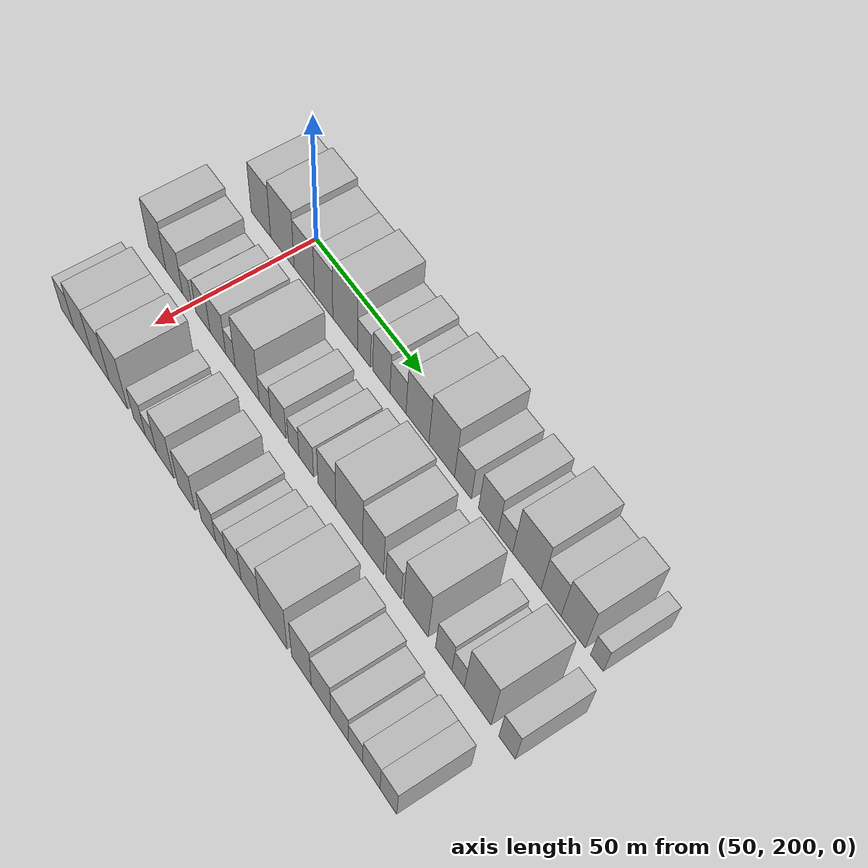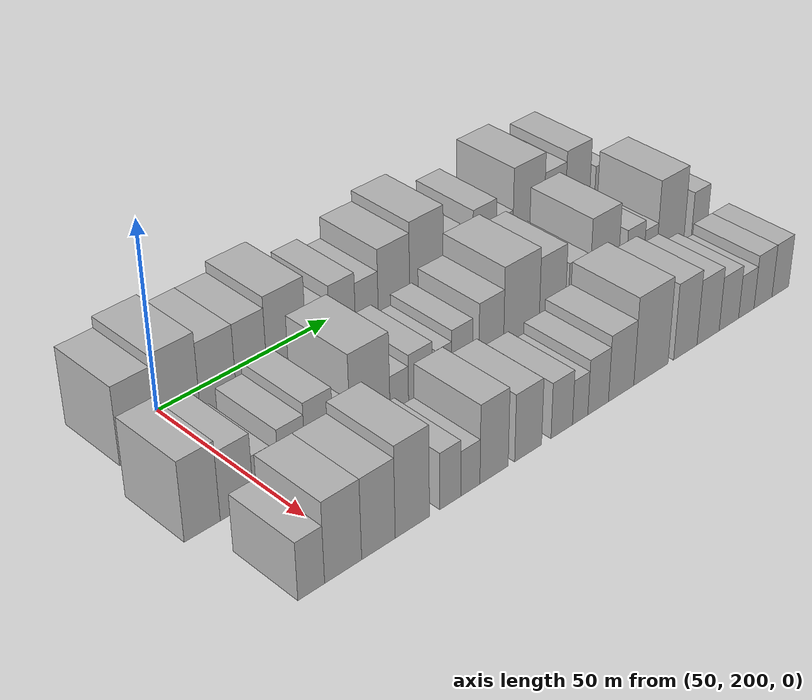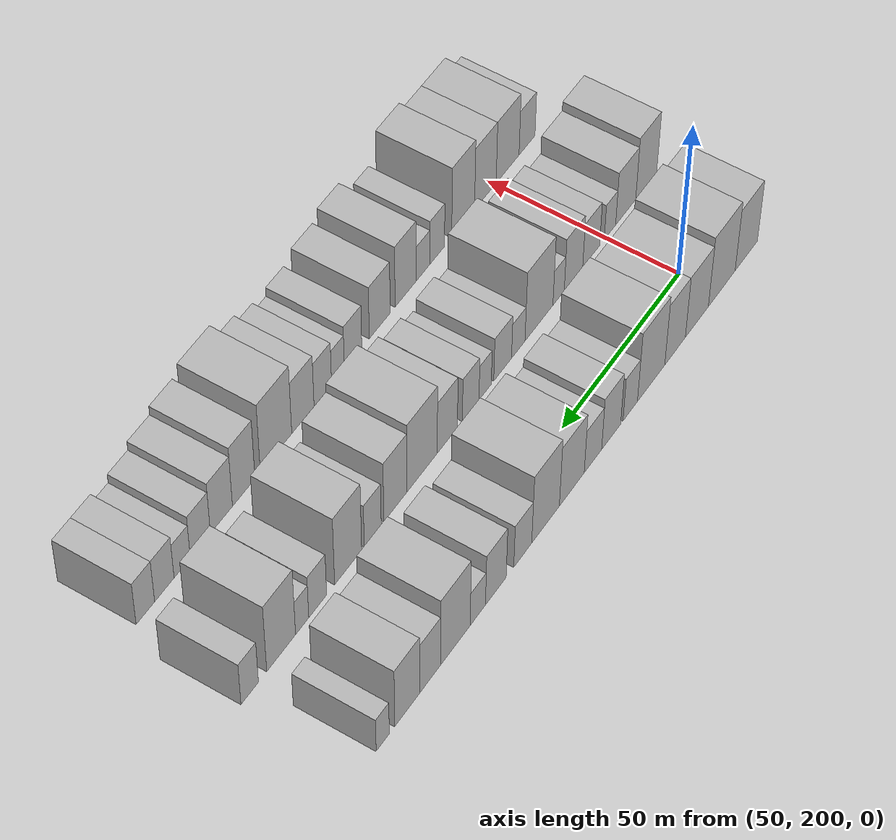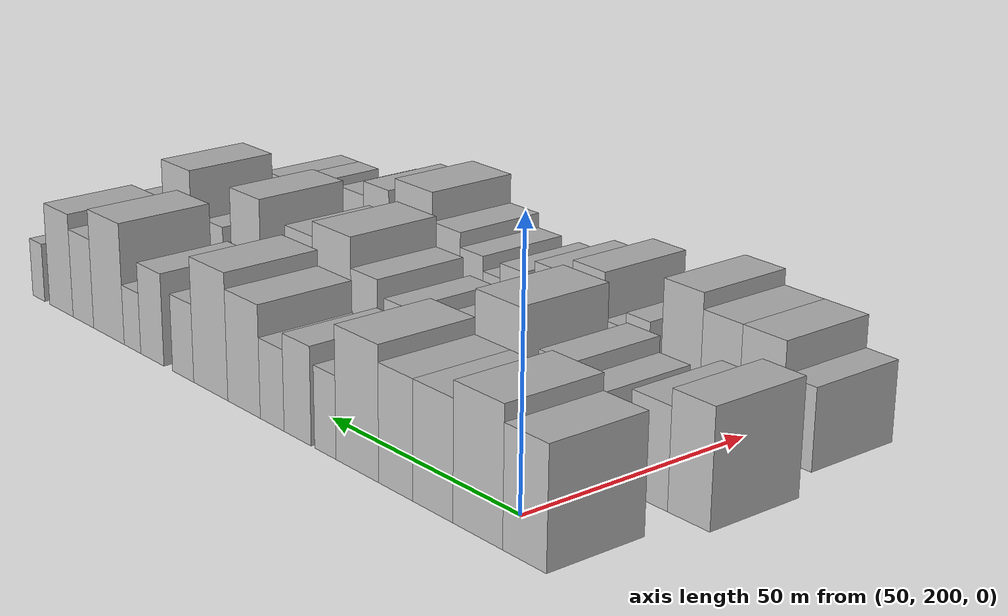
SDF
<sdf version="1.6">
 <world name="default">
  <model name="building_54">
   <static>1</static>
   <pose>50.0000 187.5377 0 0.000000 0.000000 0.000000</pose>
   <link name="link">
    <pose>0 0 10.50 0 0 0</pose>
    <collision name="collision"><geometry><box><size>20.0000 10.0596 21.0000</size></box></geometry></collision>
    <visual name="visual">
     <cast_shadows>0</cast_shadows>
     <geometry><box><size>20.0000 10.0596 21.0000</size></box></geometry>
     <material>
      <script>
       <uri>model://HANNAS_wall/materials/scripts</uri>
       <uri>model://HANNAS_wall/materials/textures</uri>
       <name>vrc/HANNAS_wall</name>
      </script>
     </material>
    </visual>
   </link>
  </model>
  <model name="building_55">
   <static>1</static>
   <pose>50.0000 198.5426 0 0.000000 0.000000 0.000000</pose>
   <link name="link">
    <pose>0 0 12.00 0 0 0</pose>
    <collision name="collision"><geometry><box><size>20.0000 11.9503 24.0000</size></box></geometry></collision>
    <visual name="visual">
     <cast_shadows>0</cast_shadows>
     <geometry><box><size>20.0000 11.9503 24.0000</size></box></geometry>
     <material>
      <script>
       <uri>model://HANNAS_wall/materials/scripts</uri>
       <uri>model://HANNAS_wall/materials/textures</uri>
       <name>vrc/HANNAS_wall</name>
      </script>
     </material>
    </visual>
   </link>
  </model>
  <model name="building_56">
   <static>1</static>
   <pose>50.0000 209.5806 0 0.000000 0.000000 0.000000</pose>
   <link name="link">
    <pose>0 0 10.50 0 0 0</pose>
    <collision name="collision"><geometry><box><size>20.0000 10.1256 21.0000</size></box></geometry></collision>
    <visual name="visual">
     <cast_shadows>0</cast_shadows>
     <geometry><box><size>20.0000 10.1256 21.0000</size></box></geometry>
     <material>
      <script>
       <uri>model://HANNAS_wall/materials/scripts</uri>
       <uri>model://HANNAS_wall/materials/textures</uri>
       <name>vrc/HANNAS_wall</name>
      </script>
     </material>
    </visual>
   </link>
  </model>
  <model name="building_57">
   <static>1</static>
   <pose>50.0000 219.1079 0 0.000000 0.000000 0.000000</pose>
   <link name="link">
    <pose>0 0 10.50 0 0 0</pose>
    <collision name="collision"><geometry><box><size>20.0000 8.9292 21.0000</size></box></geometry></collision>
    <visual name="visual">
     <cast_shadows>0</cast_shadows>
     <geometry><box><size>20.0000 8.9292 21.0000</size></box></geometry>
     <material>
      <script>
       <uri>model://HANNAS_wall/materials/scripts</uri>
       <uri>model://HANNAS_wall/materials/textures</uri>
       <name>vrc/HANNAS_wall</name>
      </script>
     </material>
    </visual>
   </link>
  </model>
  <model name="building_58">
   <static>1</static>
   <pose>50.0000 229.4209 0 0.000000 0.000000 0.000000</pose>
   <link name="link">
    <pose>0 0 12.00 0 0 0</pose>
    <collision name="collision"><geometry><box><size>20.0000 11.6969 24.0000</size></box></geometry></collision>
    <visual name="visual">
     <cast_shadows>0</cast_shadows>
     <geometry><box><size>20.0000 11.6969 24.0000</size></box></geometry>
     <material>
      <script>
       <uri>model://HANNAS_wall/materials/scripts</uri>
       <uri>model://HANNAS_wall/materials/textures</uri>
       <name>vrc/HANNAS_wall</name>
      </script>
     </material>
    </visual>
   </link>
  </model>
  <model name="building_59">
   <static>1</static>
   <pose>50.0000 238.3207 0 0.000000 0.000000 0.000000</pose>
   <link name="link">
    <pose>0 0 7.50 0 0 0</pose>
    <collision name="collision"><geometry><box><size>20.0000 6.1027 15.0000</size></box></geometry></collision>
    <visual name="visual">
     <cast_shadows>0</cast_shadows>
     <geometry><box><size>20.0000 6.1027 15.0000</size></box></geometry>
     <material>
      <script>
       <uri>model://HANNAS_wall/materials/scripts</uri>
       <uri>model://HANNAS_wall/materials/textures</uri>
       <name>vrc/HANNAS_wall</name>
      </script>
     </material>
    </visual>
   </link>
  </model>
  <model name="building_60">
   <static>1</static>
   <pose>50.0000 246.3471 0 0.000000 0.000000 0.000000</pose>
   <link name="link">
    <pose>0 0 9.00 0 0 0</pose>
    <collision name="collision"><geometry><box><size>20.0000 7.9500 18.0000</size></box></geometry></collision>
    <visual name="visual">
     <cast_shadows>0</cast_shadows>
     <geometry><box><size>20.0000 7.9500 18.0000</size></box></geometry>
     <material>
      <script>
       <uri>model://HANNAS_wall/materials/scripts</uri>
       <uri>model://HANNAS_wall/materials/textures</uri>
       <name>vrc/HANNAS_wall</name>
      </script>
     </material>
    </visual>
   </link>
  </model>
  <model name="building_61">
   <static>1</static>
   <pose>50.0000 253.9285 0 0.000000 0.000000 0.000000</pose>
   <link name="link">
    <pose>0 0 7.50 0 0 0</pose>
    <collision name="collision"><geometry><box><size>20.0000 7.2130 15.0000</size></box></geometry></collision>
    <visual name="visual">
     <cast_shadows>0</cast_shadows>
     <geometry><box><size>20.0000 7.2130 15.0000</size></box></geometry>
     <material>
      <script>
       <uri>model://HANNAS_wall/materials/scripts</uri>
       <uri>model://HANNAS_wall/materials/textures</uri>
       <name>vrc/HANNAS_wall</name>
      </script>
     </material>
    </visual>
   </link>
  </model>
  <model name="building_62">
   <static>1</static>
   <pose>50.0000 262.6263 0 0.000000 0.000000 0.000000</pose>
   <link name="link">
    <pose>0 0 10.50 0 0 0</pose>
    <collision name="collision"><geometry><box><size>20.0000 10.1825 21.0000</size></box></geometry></collision>
    <visual name="visual">
     <cast_shadows>0</cast_shadows>
     <geometry><box><size>20.0000 10.1825 21.0000</size></box></geometry>
     <material>
      <script>
       <uri>model://HANNAS_wall/materials/scripts</uri>
       <uri>model://HANNAS_wall/materials/textures</uri>
       <name>vrc/HANNAS_wall</name>
      </script>
     </material>
    </visual>
   </link>
  </model>
  <model name="building_63">
   <static>1</static>
   <pose>50.0000 273.2846 0 0.000000 0.000000 0.000000</pose>
   <link name="link">
    <pose>0 0 12.00 0 0 0</pose>
    <collision name="collision"><geometry><box><size>20.0000 11.1341 24.0000</size></box></geometry></collision>
    <visual name="visual">
     <cast_shadows>0</cast_shadows>
     <geometry><box><size>20.0000 11.1341 24.0000</size></box></geometry>
     <material>
      <script>
       <uri>model://HANNAS_wall/materials/scripts</uri>
       <uri>model://HANNAS_wall/materials/textures</uri>
       <name>vrc/HANNAS_wall</name>
      </script>
     </material>
    </visual>
   </link>
  </model>
  <model name="building_64">
   <static>1</static>
   <pose>50.0000 282.4258 0 0.000000 0.000000 0.000000</pose>
   <link name="link">
    <pose>0 0 7.50 0 0 0</pose>
    <collision name="collision"><geometry><box><size>20.0000 7.1483 15.0000</size></box></geometry></collision>
    <visual name="visual">
     <cast_shadows>0</cast_shadows>
     <geometry><box><size>20.0000 7.1483 15.0000</size></box></geometry>
     <material>
      <script>
       <uri>model://HANNAS_wall/materials/scripts</uri>
       <uri>model://HANNAS_wall/materials/textures</uri>
       <name>vrc/HANNAS_wall</name>
      </script>
     </material>
    </visual>
   </link>
  </model>
  <model name="building_65">
   <static>1</static>
   <pose>50.0000 293.0622 0 0.000000 0.000000 0.000000</pose>
   <link name="link">
    <pose>0 0 9.00 0 0 0</pose>
    <collision name="collision"><geometry><box><size>20.0000 8.1246 18.0000</size></box></geometry></collision>
    <visual name="visual">
     <cast_shadows>0</cast_shadows>
     <geometry><box><size>20.0000 8.1246 18.0000</size></box></geometry>
     <material>
      <script>
       <uri>model://HANNAS_wall/materials/scripts</uri>
       <uri>model://HANNAS_wall/materials/textures</uri>
       <name>vrc/HANNAS_wall</name>
      </script>
     </material>
    </visual>
   </link>
  </model>
  <model name="building_66">
   <static>1</static>
   <pose>50.0000 300.1071 0 0.000000 0.000000 0.000000</pose>
   <link name="link">
    <pose>0 0 6.00 0 0 0</pose>
    <collision name="collision"><geometry><box><size>20.0000 5.9651 12.0000</size></box></geometry></collision>
    <visual name="visual">
     <cast_shadows>0</cast_shadows>
     <geometry><box><size>20.0000 5.9651 12.0000</size></box></geometry>
     <material>
      <script>
       <uri>model://HANNAS_wall/materials/scripts</uri>
       <uri>model://HANNAS_wall/materials/textures</uri>
       <name>vrc/HANNAS_wall</name>
      </script>
     </material>
    </visual>
   </link>
  </model>
  <model name="building_67">
   <static>1</static>
   <pose>50.0000 308.7683 0 0.000000 0.000000 0.000000</pose>
   <link name="link">
    <pose>0 0 12.00 0 0 0</pose>
    <collision name="collision"><geometry><box><size>20.0000 11.3572 24.0000</size></box></geometry></collision>
    <visual name="visual">
     <cast_shadows>0</cast_shadows>
     <geometry><box><size>20.0000 11.3572 24.0000</size></box></geometry>
     <material>
      <script>
       <uri>model://HANNAS_wall/materials/scripts</uri>
       <uri>model://HANNAS_wall/materials/textures</uri>
       <name>vrc/HANNAS_wall</name>
      </script>
     </material>
    </visual>
   </link>
  </model>
  <model name="building_68">
   <static>1</static>
   <pose>50.0000 318.4089 0 0.000000 0.000000 0.000000</pose>
   <link name="link">
    <pose>0 0 9.00 0 0 0</pose>
    <collision name="collision"><geometry><box><size>20.0000 7.9241 18.0000</size></box></geometry></collision>
    <visual name="visual">
     <cast_shadows>0</cast_shadows>
     <geometry><box><size>20.0000 7.9241 18.0000</size></box></geometry>
     <material>
      <script>
       <uri>model://HANNAS_wall/materials/scripts</uri>
       <uri>model://HANNAS_wall/materials/textures</uri>
       <name>vrc/HANNAS_wall</name>
      </script>
     </material>
    </visual>
   </link>
  </model>
  <model name="building_69">
   <static>1</static>
   <pose>50.0000 327.0154 0 0.000000 0.000000 0.000000</pose>
   <link name="link">
    <pose>0 0 10.50 0 0 0</pose>
    <collision name="collision"><geometry><box><size>20.0000 9.2889 21.0000</size></box></geometry></collision>
    <visual name="visual">
     <cast_shadows>0</cast_shadows>
     <geometry><box><size>20.0000 9.2889 21.0000</size></box></geometry>
     <material>
      <script>
       <uri>model://HANNAS_wall/materials/scripts</uri>
       <uri>model://HANNAS_wall/materials/textures</uri>
       <name>vrc/HANNAS_wall</name>
      </script>
     </material>
    </visual>
   </link>
  </model>
  <model name="building_70">
   <static>1</static>
   <pose>50.0000 336.0711 0 0.000000 0.000000 0.000000</pose>
   <link name="link">
    <pose>0 0 6.00 0 0 0</pose>
    <collision name="collision"><geometry><box><size>20.0000 4.8225 12.0000</size></box></geometry></collision>
    <visual name="visual">
     <cast_shadows>0</cast_shadows>
     <geometry><box><size>20.0000 4.8225 12.0000</size></box></geometry>
     <material>
      <script>
       <uri>model://HANNAS_wall/materials/scripts</uri>
       <uri>model://HANNAS_wall/materials/textures</uri>
       <name>vrc/HANNAS_wall</name>
      </script>
     </material>
    </visual>
   </link>
  </model>
  <model name="building_131">
   <static>1</static>
   <pose>79.0000 182.0375 0 0.000000 0.000000 0.000000</pose>
   <link name="link">
    <pose>0 0 10.50 0 0 0</pose>
    <collision name="collision"><geometry><box><size>20.0000 9.3347 21.0000</size></box></geometry></collision>
    <visual name="visual">
     <cast_shadows>0</cast_shadows>
     <geometry><box><size>20.0000 9.3347 21.0000</size></box></geometry>
     <material>
      <script>
       <uri>model://HANNAS_wall/materials/scripts</uri>
       <uri>model://HANNAS_wall/materials/textures</uri>
       <name>vrc/HANNAS_wall</name>
      </script>
     </material>
    </visual>
   </link>
  </model>
  <model name="building_132">
   <static>1</static>
   <pose>79.0000 191.1346 0 0.000000 0.000000 0.000000</pose>
   <link name="link">
    <pose>0 0 9.00 0 0 0</pose>
    <collision name="collision"><geometry><box><size>20.0000 8.8595 18.0000</size></box></geometry></collision>
    <visual name="visual">
     <cast_shadows>0</cast_shadows>
     <geometry><box><size>20.0000 8.8595 18.0000</size></box></geometry>
     <material>
      <script>
       <uri>model://HANNAS_wall/materials/scripts</uri>
       <uri>model://HANNAS_wall/materials/textures</uri>
       <name>vrc/HANNAS_wall</name>
      </script>
     </material>
    </visual>
   </link>
  </model>
  <model name="building_133">
   <static>1</static>
   <pose>79.0000 198.0546 0 0.000000 0.000000 0.000000</pose>
   <link name="link">
    <pose>0 0 6.00 0 0 0</pose>
    <collision name="collision"><geometry><box><size>20.0000 4.9806 12.0000</size></box></geometry></collision>
    <visual name="visual">
     <cast_shadows>0</cast_shadows>
     <geometry><box><size>20.0000 4.9806 12.0000</size></box></geometry>
     <material>
      <script>
       <uri>model://HANNAS_wall/materials/scripts</uri>
       <uri>model://HANNAS_wall/materials/textures</uri>
       <name>vrc/HANNAS_wall</name>
      </script>
     </material>
    </visual>
   </link>
  </model>
  <model name="building_134">
   <static>1</static>
   <pose>79.0000 206.2095 0 0.000000 0.000000 0.000000</pose>
   <link name="link">
    <pose>0 0 7.50 0 0 0</pose>
    <collision name="collision"><geometry><box><size>20.0000 7.3294 15.0000</size></box></geometry></collision>
    <visual name="visual">
     <cast_shadows>0</cast_shadows>
     <geometry><box><size>20.0000 7.3294 15.0000</size></box></geometry>
     <material>
      <script>
       <uri>model://HANNAS_wall/materials/scripts</uri>
       <uri>model://HANNAS_wall/materials/textures</uri>
       <name>vrc/HANNAS_wall</name>
      </script>
     </material>
    </visual>
   </link>
  </model>
  <model name="building_135">
   <static>1</static>
   <pose>79.0000 213.8346 0 0.000000 0.000000 0.000000</pose>
   <link name="link">
    <pose>0 0 9.00 0 0 0</pose>
    <collision name="collision"><geometry><box><size>20.0000 7.9206 18.0000</size></box></geometry></collision>
    <visual name="visual">
     <cast_shadows>0</cast_shadows>
     <geometry><box><size>20.0000 7.9206 18.0000</size></box></geometry>
     <material>
      <script>
       <uri>model://HANNAS_wall/materials/scripts</uri>
       <uri>model://HANNAS_wall/materials/textures</uri>
       <name>vrc/HANNAS_wall</name>
      </script>
     </material>
    </visual>
   </link>
  </model>
  <model name="building_136">
   <static>1</static>
   <pose>79.0000 220.2075 0 0.000000 0.000000 0.000000</pose>
   <link name="link">
    <pose>0 0 6.00 0 0 0</pose>
    <collision name="collision"><geometry><box><size>20.0000 4.8252 12.0000</size></box></geometry></collision>
    <visual name="visual">
     <cast_shadows>0</cast_shadows>
     <geometry><box><size>20.0000 4.8252 12.0000</size></box></geometry>
     <material>
      <script>
       <uri>model://HANNAS_wall/materials/scripts</uri>
       <uri>model://HANNAS_wall/materials/textures</uri>
       <name>vrc/HANNAS_wall</name>
      </script>
     </material>
    </visual>
   </link>
  </model>
  <model name="building_137">
   <static>1</static>
   <pose>79.0000 228.4821 0 0.000000 0.000000 0.000000</pose>
   <link name="link">
    <pose>0 0 12.00 0 0 0</pose>
    <collision name="collision"><geometry><box><size>20.0000 11.7242 24.0000</size></box></geometry></collision>
    <visual name="visual">
     <cast_shadows>0</cast_shadows>
     <geometry><box><size>20.0000 11.7242 24.0000</size></box></geometry>
     <material>
      <script>
       <uri>model://HANNAS_wall/materials/scripts</uri>
       <uri>model://HANNAS_wall/materials/textures</uri>
       <name>vrc/HANNAS_wall</name>
      </script>
     </material>
    </visual>
   </link>
  </model>
  <model name="building_138">
   <static>1</static>
   <pose>79.0000 237.1394 0 0.000000 0.000000 0.000000</pose>
   <link name="link">
    <pose>0 0 6.00 0 0 0</pose>
    <collision name="collision"><geometry><box><size>20.0000 5.5903 12.0000</size></box></geometry></collision>
    <visual name="visual">
     <cast_shadows>0</cast_shadows>
     <geometry><box><size>20.0000 5.5903 12.0000</size></box></geometry>
     <material>
      <script>
       <uri>model://HANNAS_wall/materials/scripts</uri>
       <uri>model://HANNAS_wall/materials/textures</uri>
       <name>vrc/HANNAS_wall</name>
      </script>
     </material>
    </visual>
   </link>
  </model>
  <model name="building_139">
   <static>1</static>
   <pose>79.0000 243.5979 0 0.000000 0.000000 0.000000</pose>
   <link name="link">
    <pose>0 0 7.50 0 0 0</pose>
    <collision name="collision"><geometry><box><size>20.0000 7.3269 15.0000</size></box></geometry></collision>
    <visual name="visual">
     <cast_shadows>0</cast_shadows>
     <geometry><box><size>20.0000 7.3269 15.0000</size></box></geometry>
     <material>
      <script>
       <uri>model://HANNAS_wall/materials/scripts</uri>
       <uri>model://HANNAS_wall/materials/textures</uri>
       <name>vrc/HANNAS_wall</name>
      </script>
     </material>
    </visual>
   </link>
  </model>
  <model name="building_140">
   <static>1</static>
   <pose>79.0000 250.7719 0 0.000000 0.000000 0.000000</pose>
   <link name="link">
    <pose>0 0 6.00 0 0 0</pose>
    <collision name="collision"><geometry><box><size>20.0000 5.0209 12.0000</size></box></geometry></collision>
    <visual name="visual">
     <cast_shadows>0</cast_shadows>
     <geometry><box><size>20.0000 5.0209 12.0000</size></box></geometry>
     <material>
      <script>
       <uri>model://HANNAS_wall/materials/scripts</uri>
       <uri>model://HANNAS_wall/materials/textures</uri>
       <name>vrc/HANNAS_wall</name>
      </script>
     </material>
    </visual>
   </link>
  </model>
  <model name="building_141">
   <static>1</static>
   <pose>79.0000 256.6417 0 0.000000 0.000000 0.000000</pose>
   <link name="link">
    <pose>0 0 7.50 0 0 0</pose>
    <collision name="collision"><geometry><box><size>20.0000 6.7187 15.0000</size></box></geometry></collision>
    <visual name="visual">
     <cast_shadows>0</cast_shadows>
     <geometry><box><size>20.0000 6.7187 15.0000</size></box></geometry>
     <material>
      <script>
       <uri>model://HANNAS_wall/materials/scripts</uri>
       <uri>model://HANNAS_wall/materials/textures</uri>
       <name>vrc/HANNAS_wall</name>
      </script>
     </material>
    </visual>
   </link>
  </model>
  <model name="building_142">
   <static>1</static>
   <pose>79.0000 266.0289 0 0.000000 0.000000 0.000000</pose>
   <link name="link">
    <pose>0 0 9.00 0 0 0</pose>
    <collision name="collision"><geometry><box><size>20.0000 8.0558 18.0000</size></box></geometry></collision>
    <visual name="visual">
     <cast_shadows>0</cast_shadows>
     <geometry><box><size>20.0000 8.0558 18.0000</size></box></geometry>
     <material>
      <script>
       <uri>model://HANNAS_wall/materials/scripts</uri>
       <uri>model://HANNAS_wall/materials/textures</uri>
       <name>vrc/HANNAS_wall</name>
      </script>
     </material>
    </visual>
   </link>
  </model>
  <model name="building_143">
   <static>1</static>
   <pose>79.0000 276.0056 0 0.000000 0.000000 0.000000</pose>
   <link name="link">
    <pose>0 0 12.00 0 0 0</pose>
    <collision name="collision"><geometry><box><size>20.0000 11.8975 24.0000</size></box></geometry></collision>
    <visual name="visual">
     <cast_shadows>0</cast_shadows>
     <geometry><box><size>20.0000 11.8975 24.0000</size></box></geometry>
     <material>
      <script>
       <uri>model://HANNAS_wall/materials/scripts</uri>
       <uri>model://HANNAS_wall/materials/textures</uri>
       <name>vrc/HANNAS_wall</name>
      </script>
     </material>
    </visual>
   </link>
  </model>
  <model name="building_144">
   <static>1</static>
   <pose>79.0000 286.4659 0 0.000000 0.000000 0.000000</pose>
   <link name="link">
    <pose>0 0 10.50 0 0 0</pose>
    <collision name="collision"><geometry><box><size>20.0000 9.0231 21.0000</size></box></geometry></collision>
    <visual name="visual">
     <cast_shadows>0</cast_shadows>
     <geometry><box><size>20.0000 9.0231 21.0000</size></box></geometry>
     <material>
      <script>
       <uri>model://HANNAS_wall/materials/scripts</uri>
       <uri>model://HANNAS_wall/materials/textures</uri>
       <name>vrc/HANNAS_wall</name>
      </script>
     </material>
    </visual>
   </link>
  </model>
  <model name="building_145">
   <static>1</static>
   <pose>79.0000 295.2231 0 0.000000 0.000000 0.000000</pose>
   <link name="link">
    <pose>0 0 7.50 0 0 0</pose>
    <collision name="collision"><geometry><box><size>20.0000 6.4913 15.0000</size></box></geometry></collision>
    <visual name="visual">
     <cast_shadows>0</cast_shadows>
     <geometry><box><size>20.0000 6.4913 15.0000</size></box></geometry>
     <material>
      <script>
       <uri>model://HANNAS_wall/materials/scripts</uri>
       <uri>model://HANNAS_wall/materials/textures</uri>
       <name>vrc/HANNAS_wall</name>
      </script>
     </material>
    </visual>
   </link>
  </model>
  <model name="building_146">
   <static>1</static>
   <pose>79.0000 304.5828 0 0.000000 0.000000 0.000000</pose>
   <link name="link">
    <pose>0 0 12.00 0 0 0</pose>
    <collision name="collision"><geometry><box><size>20.0000 10.2282 24.0000</size></box></geometry></collision>
    <visual name="visual">
     <cast_shadows>0</cast_shadows>
     <geometry><box><size>20.0000 10.2282 24.0000</size></box></geometry>
     <material>
      <script>
       <uri>model://HANNAS_wall/materials/scripts</uri>
       <uri>model://HANNAS_wall/materials/textures</uri>
       <name>vrc/HANNAS_wall</name>
      </script>
     </material>
    </visual>
   </link>
  </model>
  <model name="building_147">
   <static>1</static>
   <pose>79.0000 316.0205 0 0.000000 0.000000 0.000000</pose>
   <link name="link">
    <pose>0 0 7.50 0 0 0</pose>
    <collision name="collision"><geometry><box><size>20.0000 6.6471 15.0000</size></box></geometry></collision>
    <visual name="visual">
     <cast_shadows>0</cast_shadows>
     <geometry><box><size>20.0000 6.6471 15.0000</size></box></geometry>
     <material>
      <script>
       <uri>model://HANNAS_wall/materials/scripts</uri>
       <uri>model://HANNAS_wall/materials/textures</uri>
       <name>vrc/HANNAS_wall</name>
      </script>
     </material>
    </visual>
   </link>
  </model>
  <model name="building_148">
   <static>1</static>
   <pose>79.0000 321.7916 0 0.000000 0.000000 0.000000</pose>
   <link name="link">
    <pose>0 0 6.00 0 0 0</pose>
    <collision name="collision"><geometry><box><size>20.0000 4.8951 12.0000</size></box></geometry></collision>
    <visual name="visual">
     <cast_shadows>0</cast_shadows>
     <geometry><box><size>20.0000 4.8951 12.0000</size></box></geometry>
     <material>
      <script>
       <uri>model://HANNAS_wall/materials/scripts</uri>
       <uri>model://HANNAS_wall/materials/textures</uri>
       <name>vrc/HANNAS_wall</name>
      </script>
     </material>
    </visual>
   </link>
  </model>
  <model name="building_149">
   <static>1</static>
   <pose>79.0000 329.5037 0 0.000000 0.000000 0.000000</pose>
   <link name="link">
    <pose>0 0 12.00 0 0 0</pose>
    <collision name="collision"><geometry><box><size>20.0000 10.5292 24.0000</size></box></geometry></collision>
    <visual name="visual">
     <cast_shadows>0</cast_shadows>
     <geometry><box><size>20.0000 10.5292 24.0000</size></box></geometry>
     <material>
      <script>
       <uri>model://HANNAS_wall/materials/scripts</uri>
       <uri>model://HANNAS_wall/materials/textures</uri>
       <name>vrc/HANNAS_wall</name>
      </script>
     </material>
    </visual>
   </link>
  </model>
  <model name="building_150">
   <static>1</static>
   <pose>79.0000 340.9067 0 0.000000 0.000000 0.000000</pose>
   <link name="link">
    <pose>0 0 7.50 0 0 0</pose>
    <collision name="collision"><geometry><box><size>20.0000 6.2769 15.0000</size></box></geometry></collision>
    <visual name="visual">
     <cast_shadows>0</cast_shadows>
     <geometry><box><size>20.0000 6.2769 15.0000</size></box></geometry>
     <material>
      <script>
       <uri>model://HANNAS_wall/materials/scripts</uri>
       <uri>model://HANNAS_wall/materials/textures</uri>
       <name>vrc/HANNAS_wall</name>
      </script>
     </material>
    </visual>
   </link>
  </model>
  <model name="building_207">
   <static>1</static>
   <pose>108.0000 186.2640 0 0.000000 0.000000 0.000000</pose>
   <link name="link">
    <pose>0 0 7.50 0 0 0</pose>
    <collision name="collision"><geometry><box><size>20.0000 6.9427 15.0000</size></box></geometry></collision>
    <visual name="visual">
     <cast_shadows>0</cast_shadows>
     <geometry><box><size>20.0000 6.9427 15.0000</size></box></geometry>
     <material>
      <script>
       <uri>model://HANNAS_wall/materials/scripts</uri>
       <uri>model://HANNAS_wall/materials/textures</uri>
       <name>vrc/HANNAS_wall</name>
      </script>
     </material>
    </visual>
   </link>
  </model>
  <model name="building_208">
   <static>1</static>
   <pose>108.0000 194.6637 0 0.000000 0.000000 0.000000</pose>
   <link name="link">
    <pose>0 0 10.50 0 0 0</pose>
    <collision name="collision"><geometry><box><size>20.0000 9.8567 21.0000</size></box></geometry></collision>
    <visual name="visual">
     <cast_shadows>0</cast_shadows>
     <geometry><box><size>20.0000 9.8567 21.0000</size></box></geometry>
     <material>
      <script>
       <uri>model://HANNAS_wall/materials/scripts</uri>
       <uri>model://HANNAS_wall/materials/textures</uri>
       <name>vrc/HANNAS_wall</name>
      </script>
     </material>
    </visual>
   </link>
  </model>
  <model name="building_209">
   <static>1</static>
   <pose>108.0000 204.1925 0 0.000000 0.000000 0.000000</pose>
   <link name="link">
    <pose>0 0 10.50 0 0 0</pose>
    <collision name="collision"><geometry><box><size>20.0000 9.2008 21.0000</size></box></geometry></collision>
    <visual name="visual">
     <cast_shadows>0</cast_shadows>
     <geometry><box><size>20.0000 9.2008 21.0000</size></box></geometry>
     <material>
      <script>
       <uri>model://HANNAS_wall/materials/scripts</uri>
       <uri>model://HANNAS_wall/materials/textures</uri>
       <name>vrc/HANNAS_wall</name>
      </script>
     </material>
    </visual>
   </link>
  </model>
  <model name="building_210">
   <static>1</static>
   <pose>108.0000 213.6005 0 0.000000 0.000000 0.000000</pose>
   <link name="link">
    <pose>0 0 12.00 0 0 0</pose>
    <collision name="collision"><geometry><box><size>20.0000 9.6152 24.0000</size></box></geometry></collision>
    <visual name="visual">
     <cast_shadows>0</cast_shadows>
     <geometry><box><size>20.0000 9.6152 24.0000</size></box></geometry>
     <material>
      <script>
       <uri>model://HANNAS_wall/materials/scripts</uri>
       <uri>model://HANNAS_wall/materials/textures</uri>
       <name>vrc/HANNAS_wall</name>
      </script>
     </material>
    </visual>
   </link>
  </model>
  <model name="building_211">
   <static>1</static>
   <pose>108.0000 224.4437 0 0.000000 0.000000 0.000000</pose>
   <link name="link">
    <pose>0 0 7.50 0 0 0</pose>
    <collision name="collision"><geometry><box><size>20.0000 6.0713 15.0000</size></box></geometry></collision>
    <visual name="visual">
     <cast_shadows>0</cast_shadows>
     <geometry><box><size>20.0000 6.0713 15.0000</size></box></geometry>
     <material>
      <script>
       <uri>model://HANNAS_wall/materials/scripts</uri>
       <uri>model://HANNAS_wall/materials/textures</uri>
       <name>vrc/HANNAS_wall</name>
      </script>
     </material>
    </visual>
   </link>
  </model>
  <model name="building_212">
   <static>1</static>
   <pose>108.0000 230.3257 0 0.000000 0.000000 0.000000</pose>
   <link name="link">
    <pose>0 0 6.00 0 0 0</pose>
    <collision name="collision"><geometry><box><size>20.0000 5.6927 12.0000</size></box></geometry></collision>
    <visual name="visual">
     <cast_shadows>0</cast_shadows>
     <geometry><box><size>20.0000 5.6927 12.0000</size></box></geometry>
     <material>
      <script>
       <uri>model://HANNAS_wall/materials/scripts</uri>
       <uri>model://HANNAS_wall/materials/textures</uri>
       <name>vrc/HANNAS_wall</name>
      </script>
     </material>
    </visual>
   </link>
  </model>
  <model name="building_213">
   <static>1</static>
   <pose>108.0000 237.4408 0 0.000000 0.000000 0.000000</pose>
   <link name="link">
    <pose>0 0 10.50 0 0 0</pose>
    <collision name="collision"><geometry><box><size>20.0000 8.5374 21.0000</size></box></geometry></collision>
    <visual name="visual">
     <cast_shadows>0</cast_shadows>
     <geometry><box><size>20.0000 8.5374 21.0000</size></box></geometry>
     <material>
      <script>
       <uri>model://HANNAS_wall/materials/scripts</uri>
       <uri>model://HANNAS_wall/materials/textures</uri>
       <name>vrc/HANNAS_wall</name>
      </script>
     </material>
    </visual>
   </link>
  </model>
  <model name="building_214">
   <static>1</static>
   <pose>108.0000 247.8997 0 0.000000 0.000000 0.000000</pose>
   <link name="link">
    <pose>0 0 9.00 0 0 0</pose>
    <collision name="collision"><geometry><box><size>20.0000 8.3803 18.0000</size></box></geometry></collision>
    <visual name="visual">
     <cast_shadows>0</cast_shadows>
     <geometry><box><size>20.0000 8.3803 18.0000</size></box></geometry>
     <material>
      <script>
       <uri>model://HANNAS_wall/materials/scripts</uri>
       <uri>model://HANNAS_wall/materials/textures</uri>
       <name>vrc/HANNAS_wall</name>
      </script>
     </material>
    </visual>
   </link>
  </model>
  <model name="building_215">
   <static>1</static>
   <pose>108.0000 258.5386 0 0.000000 0.000000 0.000000</pose>
   <link name="link">
    <pose>0 0 7.50 0 0 0</pose>
    <collision name="collision"><geometry><box><size>20.0000 6.8974 15.0000</size></box></geometry></collision>
    <visual name="visual">
     <cast_shadows>0</cast_shadows>
     <geometry><box><size>20.0000 6.8974 15.0000</size></box></geometry>
     <material>
      <script>
       <uri>model://HANNAS_wall/materials/scripts</uri>
       <uri>model://HANNAS_wall/materials/textures</uri>
       <name>vrc/HANNAS_wall</name>
      </script>
     </material>
    </visual>
   </link>
  </model>
  <model name="building_216">
   <static>1</static>
   <pose>108.0000 264.5002 0 0.000000 0.000000 0.000000</pose>
   <link name="link">
    <pose>0 0 6.00 0 0 0</pose>
    <collision name="collision"><geometry><box><size>20.0000 5.0259 12.0000</size></box></geometry></collision>
    <visual name="visual">
     <cast_shadows>0</cast_shadows>
     <geometry><box><size>20.0000 5.0259 12.0000</size></box></geometry>
     <material>
      <script>
       <uri>model://HANNAS_wall/materials/scripts</uri>
       <uri>model://HANNAS_wall/materials/textures</uri>
       <name>vrc/HANNAS_wall</name>
      </script>
     </material>
    </visual>
   </link>
  </model>
  <model name="building_217">
   <static>1</static>
   <pose>108.0000 270.4310 0 0.000000 0.000000 0.000000</pose>
   <link name="link">
    <pose>0 0 7.50 0 0 0</pose>
    <collision name="collision"><geometry><box><size>20.0000 6.8355 15.0000</size></box></geometry></collision>
    <visual name="visual">
     <cast_shadows>0</cast_shadows>
     <geometry><box><size>20.0000 6.8355 15.0000</size></box></geometry>
     <material>
      <script>
       <uri>model://HANNAS_wall/materials/scripts</uri>
       <uri>model://HANNAS_wall/materials/textures</uri>
       <name>vrc/HANNAS_wall</name>
      </script>
     </material>
    </visual>
   </link>
  </model>
  <model name="building_218">
   <static>1</static>
   <pose>108.0000 278.1520 0 0.000000 0.000000 0.000000</pose>
   <link name="link">
    <pose>0 0 9.00 0 0 0</pose>
    <collision name="collision"><geometry><box><size>20.0000 8.6065 18.0000</size></box></geometry></collision>
    <visual name="visual">
     <cast_shadows>0</cast_shadows>
     <geometry><box><size>20.0000 8.6065 18.0000</size></box></geometry>
     <material>
      <script>
       <uri>model://HANNAS_wall/materials/scripts</uri>
       <uri>model://HANNAS_wall/materials/textures</uri>
       <name>vrc/HANNAS_wall</name>
      </script>
     </material>
    </visual>
   </link>
  </model>
  <model name="building_219">
   <static>1</static>
   <pose>108.0000 288.4363 0 0.000000 0.000000 0.000000</pose>
   <link name="link">
    <pose>0 0 12.00 0 0 0</pose>
    <collision name="collision"><geometry><box><size>20.0000 11.9621 24.0000</size></box></geometry></collision>
    <visual name="visual">
     <cast_shadows>0</cast_shadows>
     <geometry><box><size>20.0000 11.9621 24.0000</size></box></geometry>
     <material>
      <script>
       <uri>model://HANNAS_wall/materials/scripts</uri>
       <uri>model://HANNAS_wall/materials/textures</uri>
       <name>vrc/HANNAS_wall</name>
      </script>
     </material>
    </visual>
   </link>
  </model>
  <model name="building_220">
   <static>1</static>
   <pose>108.0000 300.6269 0 0.000000 0.000000 0.000000</pose>
   <link name="link">
    <pose>0 0 10.50 0 0 0</pose>
    <collision name="collision"><geometry><box><size>20.0000 8.4192 21.0000</size></box></geometry></collision>
    <visual name="visual">
     <cast_shadows>0</cast_shadows>
     <geometry><box><size>20.0000 8.4192 21.0000</size></box></geometry>
     <material>
      <script>
       <uri>model://HANNAS_wall/materials/scripts</uri>
       <uri>model://HANNAS_wall/materials/textures</uri>
       <name>vrc/HANNAS_wall</name>
      </script>
     </material>
    </visual>
   </link>
  </model>
  <model name="building_221">
   <static>1</static>
   <pose>108.0000 308.9241 0 0.000000 0.000000 0.000000</pose>
   <link name="link">
    <pose>0 0 9.00 0 0 0</pose>
    <collision name="collision"><geometry><box><size>20.0000 8.1754 18.0000</size></box></geometry></collision>
    <visual name="visual">
     <cast_shadows>0</cast_shadows>
     <geometry><box><size>20.0000 8.1754 18.0000</size></box></geometry>
     <material>
      <script>
       <uri>model://HANNAS_wall/materials/scripts</uri>
       <uri>model://HANNAS_wall/materials/textures</uri>
       <name>vrc/HANNAS_wall</name>
      </script>
     </material>
    </visual>
   </link>
  </model>
  <model name="building_222">
   <static>1</static>
   <pose>108.0000 316.6833 0 0.000000 0.000000 0.000000</pose>
   <link name="link">
    <pose>0 0 7.50 0 0 0</pose>
    <collision name="collision"><geometry><box><size>20.0000 7.3430 15.0000</size></box></geometry></collision>
    <visual name="visual">
     <cast_shadows>0</cast_shadows>
     <geometry><box><size>20.0000 7.3430 15.0000</size></box></geometry>
     <material>
      <script>
       <uri>model://HANNAS_wall/materials/scripts</uri>
       <uri>model://HANNAS_wall/materials/textures</uri>
       <name>vrc/HANNAS_wall</name>
      </script>
     </material>
    </visual>
   </link>
  </model>
  <model name="building_223">
   <static>1</static>
   <pose>108.0000 323.3013 0 0.000000 0.000000 0.000000</pose>
   <link name="link">
    <pose>0 0 6.00 0 0 0</pose>
    <collision name="collision"><geometry><box><size>20.0000 5.8929 12.0000</size></box></geometry></collision>
    <visual name="visual">
     <cast_shadows>0</cast_shadows>
     <geometry><box><size>20.0000 5.8929 12.0000</size></box></geometry>
     <material>
      <script>
       <uri>model://HANNAS_wall/materials/scripts</uri>
       <uri>model://HANNAS_wall/materials/textures</uri>
       <name>vrc/HANNAS_wall</name>
      </script>
     </material>
    </visual>
   </link>
  </model>
  <model name="building_224">
   <static>1</static>
   <pose>108.0000 329.7410 0 0.000000 0.000000 0.000000</pose>
   <link name="link">
    <pose>0 0 7.50 0 0 0</pose>
    <collision name="collision"><geometry><box><size>20.0000 6.9865 15.0000</size></box></geometry></collision>
    <visual name="visual">
     <cast_shadows>0</cast_shadows>
     <geometry><box><size>20.0000 6.9865 15.0000</size></box></geometry>
     <material>
      <script>
       <uri>model://HANNAS_wall/materials/scripts</uri>
       <uri>model://HANNAS_wall/materials/textures</uri>
       <name>vrc/HANNAS_wall</name>
      </script>
     </material>
    </visual>
   </link>
  </model>
  <model name="building_225">
   <static>1</static>
   <pose>108.0000 336.5338 0 0.000000 0.000000 0.000000</pose>
   <link name="link">
    <pose>0 0 7.50 0 0 0</pose>
    <collision name="collision"><geometry><box><size>20.0000 6.5991 15.0000</size></box></geometry></collision>
    <visual name="visual">
     <cast_shadows>0</cast_shadows>
     <geometry><box><size>20.0000 6.5991 15.0000</size></box></geometry>
     <material>
      <script>
       <uri>model://HANNAS_wall/materials/scripts</uri>
       <uri>model://HANNAS_wall/materials/textures</uri>
       <name>vrc/HANNAS_wall</name>
      </script>
     </material>
    </visual>
   </link>
  </model>
 </world>
</sdf>
